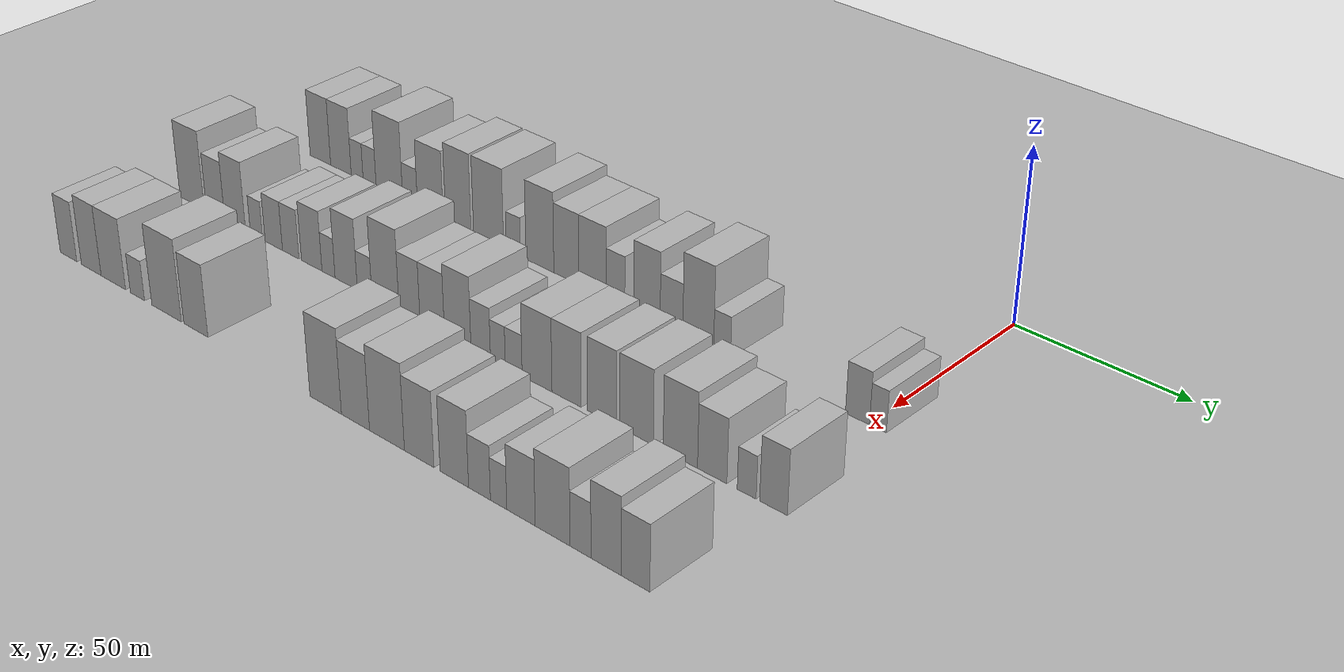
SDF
<sdf version="1.6">
 <world name="default">
  <include><name>ground_plane_1</name><uri>model://HANNAS_ground_plane</uri></include>
  <include>
   <name>ground_plane_2</name>
   <uri>model://HANNAS_ground_plane</uri>
   <pose>100 0 0  0 0 0</pose>
  </include>
  <model name="building_23">
   <static>1</static>
   <pose>50.0000 -192.0016 0 0.000000 0.000000 0.000000</pose>
   <link name="link">
    <pose>0 0 10.50 0 0 0</pose>
    <collision name="collision"><geometry><box><size>20.0000 8.7167 21.0000</size></box></geometry></collision>
    <visual name="visual">
     <cast_shadows>0</cast_shadows>
     <geometry><box><size>20.0000 8.7167 21.0000</size></box></geometry>
     <material>
      <script>
       <uri>model://HANNAS_wall/materials/scripts</uri>
       <uri>model://HANNAS_wall/materials/textures</uri>
       <name>vrc/HANNAS_wall</name>
      </script>
     </material>
    </visual>
   </link>
  </model>
  <model name="building_24">
   <static>1</static>
   <pose>50.0000 -183.3436 0 0.000000 0.000000 0.000000</pose>
   <link name="link">
    <pose>0 0 10.50 0 0 0</pose>
    <collision name="collision"><geometry><box><size>20.0000 8.5995 21.0000</size></box></geometry></collision>
    <visual name="visual">
     <cast_shadows>0</cast_shadows>
     <geometry><box><size>20.0000 8.5995 21.0000</size></box></geometry>
     <material>
      <script>
       <uri>model://HANNAS_wall/materials/scripts</uri>
       <uri>model://HANNAS_wall/materials/textures</uri>
       <name>vrc/HANNAS_wall</name>
      </script>
     </material>
    </visual>
   </link>
  </model>
  <model name="building_25">
   <static>1</static>
   <pose>50.0000 -176.5685 0 0.000000 0.000000 0.000000</pose>
   <link name="link">
    <pose>0 0 6.00 0 0 0</pose>
    <collision name="collision"><geometry><box><size>20.0000 4.9507 12.0000</size></box></geometry></collision>
    <visual name="visual">
     <cast_shadows>0</cast_shadows>
     <geometry><box><size>20.0000 4.9507 12.0000</size></box></geometry>
     <material>
      <script>
       <uri>model://HANNAS_wall/materials/scripts</uri>
       <uri>model://HANNAS_wall/materials/textures</uri>
       <name>vrc/HANNAS_wall</name>
      </script>
     </material>
    </visual>
   </link>
  </model>
  <model name="building_26">
   <static>1</static>
   <pose>50.0000 -171.4349 0 0.000000 0.000000 0.000000</pose>
   <link name="link">
    <pose>0 0 6.00 0 0 0</pose>
    <collision name="collision"><geometry><box><size>20.0000 5.3165 12.0000</size></box></geometry></collision>
    <visual name="visual">
     <cast_shadows>0</cast_shadows>
     <geometry><box><size>20.0000 5.3165 12.0000</size></box></geometry>
     <material>
      <script>
       <uri>model://HANNAS_wall/materials/scripts</uri>
       <uri>model://HANNAS_wall/materials/textures</uri>
       <name>vrc/HANNAS_wall</name>
      </script>
     </material>
    </visual>
   </link>
  </model>
  <model name="building_27">
   <static>1</static>
   <pose>50.0000 -163.4091 0 0.000000 0.000000 0.000000</pose>
   <link name="link">
    <pose>0 0 12.00 0 0 0</pose>
    <collision name="collision"><geometry><box><size>20.0000 10.7351 24.0000</size></box></geometry></collision>
    <visual name="visual">
     <cast_shadows>0</cast_shadows>
     <geometry><box><size>20.0000 10.7351 24.0000</size></box></geometry>
     <material>
      <script>
       <uri>model://HANNAS_wall/materials/scripts</uri>
       <uri>model://HANNAS_wall/materials/textures</uri>
       <name>vrc/HANNAS_wall</name>
      </script>
     </material>
    </visual>
   </link>
  </model>
  <model name="building_28">
   <static>1</static>
   <pose>50.0000 -155.1005 0 0.000000 0.000000 0.000000</pose>
   <link name="link">
    <pose>0 0 6.00 0 0 0</pose>
    <collision name="collision"><geometry><box><size>20.0000 5.8822 12.0000</size></box></geometry></collision>
    <visual name="visual">
     <cast_shadows>0</cast_shadows>
     <geometry><box><size>20.0000 5.8822 12.0000</size></box></geometry>
     <material>
      <script>
       <uri>model://HANNAS_wall/materials/scripts</uri>
       <uri>model://HANNAS_wall/materials/textures</uri>
       <name>vrc/HANNAS_wall</name>
      </script>
     </material>
    </visual>
   </link>
  </model>
  <model name="building_29">
   <static>1</static>
   <pose>50.0000 -147.1350 0 0.000000 0.000000 0.000000</pose>
   <link name="link">
    <pose>0 0 10.50 0 0 0</pose>
    <collision name="collision"><geometry><box><size>20.0000 10.0487 21.0000</size></box></geometry></collision>
    <visual name="visual">
     <cast_shadows>0</cast_shadows>
     <geometry><box><size>20.0000 10.0487 21.0000</size></box></geometry>
     <material>
      <script>
       <uri>model://HANNAS_wall/materials/scripts</uri>
       <uri>model://HANNAS_wall/materials/textures</uri>
       <name>vrc/HANNAS_wall</name>
      </script>
     </material>
    </visual>
   </link>
  </model>
  <model name="building_30">
   <static>1</static>
   <pose>50.0000 -136.2777 0 0.000000 0.000000 0.000000</pose>
   <link name="link">
    <pose>0 0 12.00 0 0 0</pose>
    <collision name="collision"><geometry><box><size>20.0000 9.6658 24.0000</size></box></geometry></collision>
    <visual name="visual">
     <cast_shadows>0</cast_shadows>
     <geometry><box><size>20.0000 9.6658 24.0000</size></box></geometry>
     <material>
      <script>
       <uri>model://HANNAS_wall/materials/scripts</uri>
       <uri>model://HANNAS_wall/materials/textures</uri>
       <name>vrc/HANNAS_wall</name>
      </script>
     </material>
    </visual>
   </link>
  </model>
  <model name="building_31">
   <static>1</static>
   <pose>50.0000 -124.8210 0 0.000000 0.000000 0.000000</pose>
   <link name="link">
    <pose>0 0 12.00 0 0 0</pose>
    <collision name="collision"><geometry><box><size>20.0000 11.2476 24.0000</size></box></geometry></collision>
    <visual name="visual">
     <cast_shadows>0</cast_shadows>
     <geometry><box><size>20.0000 11.2476 24.0000</size></box></geometry>
     <material>
      <script>
       <uri>model://HANNAS_wall/materials/scripts</uri>
       <uri>model://HANNAS_wall/materials/textures</uri>
       <name>vrc/HANNAS_wall</name>
      </script>
     </material>
    </visual>
   </link>
  </model>
  <model name="building_32">
   <static>1</static>
   <pose>50.0000 -115.5725 0 0.000000 0.000000 0.000000</pose>
   <link name="link">
    <pose>0 0 6.00 0 0 0</pose>
    <collision name="collision"><geometry><box><size>20.0000 5.2493 12.0000</size></box></geometry></collision>
    <visual name="visual">
     <cast_shadows>0</cast_shadows>
     <geometry><box><size>20.0000 5.2493 12.0000</size></box></geometry>
     <material>
      <script>
       <uri>model://HANNAS_wall/materials/scripts</uri>
       <uri>model://HANNAS_wall/materials/textures</uri>
       <name>vrc/HANNAS_wall</name>
      </script>
     </material>
    </visual>
   </link>
  </model>
  <model name="building_33">
   <static>1</static>
   <pose>50.0000 -105.9204 0 0.000000 0.000000 0.000000</pose>
   <link name="link">
    <pose>0 0 12.00 0 0 0</pose>
    <collision name="collision"><geometry><box><size>20.0000 10.0549 24.0000</size></box></geometry></collision>
    <visual name="visual">
     <cast_shadows>0</cast_shadows>
     <geometry><box><size>20.0000 10.0549 24.0000</size></box></geometry>
     <material>
      <script>
       <uri>model://HANNAS_wall/materials/scripts</uri>
       <uri>model://HANNAS_wall/materials/textures</uri>
       <name>vrc/HANNAS_wall</name>
      </script>
     </material>
    </visual>
   </link>
  </model>
  <model name="building_34">
   <static>1</static>
   <pose>50.0000 -96.4681 0 0.000000 0.000000 0.000000</pose>
   <link name="link">
    <pose>0 0 10.50 0 0 0</pose>
    <collision name="collision"><geometry><box><size>20.0000 8.8497 21.0000</size></box></geometry></collision>
    <visual name="visual">
     <cast_shadows>0</cast_shadows>
     <geometry><box><size>20.0000 8.8497 21.0000</size></box></geometry>
     <material>
      <script>
       <uri>model://HANNAS_wall/materials/scripts</uri>
       <uri>model://HANNAS_wall/materials/textures</uri>
       <name>vrc/HANNAS_wall</name>
      </script>
     </material>
    </visual>
   </link>
  </model>
  <model name="building_35">
   <static>1</static>
   <pose>50.0000 -87.3076 0 0.000000 0.000000 0.000000</pose>
   <link name="link">
    <pose>0 0 10.50 0 0 0</pose>
    <collision name="collision"><geometry><box><size>20.0000 9.4713 21.0000</size></box></geometry></collision>
    <visual name="visual">
     <cast_shadows>0</cast_shadows>
     <geometry><box><size>20.0000 9.4713 21.0000</size></box></geometry>
     <material>
      <script>
       <uri>model://HANNAS_wall/materials/scripts</uri>
       <uri>model://HANNAS_wall/materials/textures</uri>
       <name>vrc/HANNAS_wall</name>
      </script>
     </material>
    </visual>
   </link>
  </model>
  <model name="building_36">
   <static>1</static>
   <pose>50.0000 -79.3680 0 0.000000 0.000000 0.000000</pose>
   <link name="link">
    <pose>0 0 7.50 0 0 0</pose>
    <collision name="collision"><geometry><box><size>20.0000 6.4079 15.0000</size></box></geometry></collision>
    <visual name="visual">
     <cast_shadows>0</cast_shadows>
     <geometry><box><size>20.0000 6.4079 15.0000</size></box></geometry>
     <material>
      <script>
       <uri>model://HANNAS_wall/materials/scripts</uri>
       <uri>model://HANNAS_wall/materials/textures</uri>
       <name>vrc/HANNAS_wall</name>
      </script>
     </material>
    </visual>
   </link>
  </model>
  <model name="building_37">
   <static>1</static>
   <pose>50.0000 -68.7371 0 0.000000 0.000000 0.000000</pose>
   <link name="link">
    <pose>0 0 10.50 0 0 0</pose>
    <collision name="collision"><geometry><box><size>20.0000 8.8539 21.0000</size></box></geometry></collision>
    <visual name="visual">
     <cast_shadows>0</cast_shadows>
     <geometry><box><size>20.0000 8.8539 21.0000</size></box></geometry>
     <material>
      <script>
       <uri>model://HANNAS_wall/materials/scripts</uri>
       <uri>model://HANNAS_wall/materials/textures</uri>
       <name>vrc/HANNAS_wall</name>
      </script>
     </material>
    </visual>
   </link>
  </model>
  <model name="building_38">
   <static>1</static>
   <pose>50.0000 -60.5868 0 0.000000 0.000000 0.000000</pose>
   <link name="link">
    <pose>0 0 7.50 0 0 0</pose>
    <collision name="collision"><geometry><box><size>20.0000 7.4467 15.0000</size></box></geometry></collision>
    <visual name="visual">
     <cast_shadows>0</cast_shadows>
     <geometry><box><size>20.0000 7.4467 15.0000</size></box></geometry>
     <material>
      <script>
       <uri>model://HANNAS_wall/materials/scripts</uri>
       <uri>model://HANNAS_wall/materials/textures</uri>
       <name>vrc/HANNAS_wall</name>
      </script>
     </material>
    </visual>
   </link>
  </model>
  <model name="building_39">
   <static>1</static>
   <pose>50.0000 -51.8741 0 0.000000 0.000000 0.000000</pose>
   <link name="link">
    <pose>0 0 12.00 0 0 0</pose>
    <collision name="collision"><geometry><box><size>20.0000 9.9787 24.0000</size></box></geometry></collision>
    <visual name="visual">
     <cast_shadows>0</cast_shadows>
     <geometry><box><size>20.0000 9.9787 24.0000</size></box></geometry>
     <material>
      <script>
       <uri>model://HANNAS_wall/materials/scripts</uri>
       <uri>model://HANNAS_wall/materials/textures</uri>
       <name>vrc/HANNAS_wall</name>
      </script>
     </material>
    </visual>
   </link>
  </model>
  <model name="building_40">
   <static>1</static>
   <pose>50.0000 -44.1848 0 0.000000 0.000000 0.000000</pose>
   <link name="link">
    <pose>0 0 6.00 0 0 0</pose>
    <collision name="collision"><geometry><box><size>20.0000 5.3999 12.0000</size></box></geometry></collision>
    <visual name="visual">
     <cast_shadows>0</cast_shadows>
     <geometry><box><size>20.0000 5.3999 12.0000</size></box></geometry>
     <material>
      <script>
       <uri>model://HANNAS_wall/materials/scripts</uri>
       <uri>model://HANNAS_wall/materials/textures</uri>
       <name>vrc/HANNAS_wall</name>
      </script>
     </material>
    </visual>
   </link>
  </model>
  <model name="building_41">
   <static>1</static>
   <pose>50.0000 -2.9925 0 0.000000 0.000000 0.000000</pose>
   <link name="link">
    <pose>0 0 7.50 0 0 0</pose>
    <collision name="collision"><geometry><box><size>20.0000 6.9949 15.0000</size></box></geometry></collision>
    <visual name="visual">
     <cast_shadows>0</cast_shadows>
     <geometry><box><size>20.0000 6.9949 15.0000</size></box></geometry>
     <material>
      <script>
       <uri>model://HANNAS_wall/materials/scripts</uri>
       <uri>model://HANNAS_wall/materials/textures</uri>
       <name>vrc/HANNAS_wall</name>
      </script>
     </material>
    </visual>
   </link>
  </model>
  <model name="building_42">
   <static>1</static>
   <pose>50.0000 2.9377 0 0.000000 0.000000 0.000000</pose>
   <link name="link">
    <pose>0 0 6.00 0 0 0</pose>
    <collision name="collision"><geometry><box><size>20.0000 4.8656 12.0000</size></box></geometry></collision>
    <visual name="visual">
     <cast_shadows>0</cast_shadows>
     <geometry><box><size>20.0000 4.8656 12.0000</size></box></geometry>
     <material>
      <script>
       <uri>model://HANNAS_wall/materials/scripts</uri>
       <uri>model://HANNAS_wall/materials/textures</uri>
       <name>vrc/HANNAS_wall</name>
      </script>
     </material>
    </visual>
   </link>
  </model>
  <model name="building_106">
   <static>1</static>
   <pose>90.0000 -198.6692 0 0.000000 0.000000 0.000000</pose>
   <link name="link">
    <pose>0 0 12.00 0 0 0</pose>
    <collision name="collision"><geometry><box><size>20.0000 10.4894 24.0000</size></box></geometry></collision>
    <visual name="visual">
     <cast_shadows>0</cast_shadows>
     <geometry><box><size>20.0000 10.4894 24.0000</size></box></geometry>
     <material>
      <script>
       <uri>model://HANNAS_wall/materials/scripts</uri>
       <uri>model://HANNAS_wall/materials/textures</uri>
       <name>vrc/HANNAS_wall</name>
      </script>
     </material>
    </visual>
   </link>
  </model>
  <model name="building_107">
   <static>1</static>
   <pose>90.0000 -188.5554 0 0.000000 0.000000 0.000000</pose>
   <link name="link">
    <pose>0 0 9.00 0 0 0</pose>
    <collision name="collision"><geometry><box><size>20.0000 7.7381 18.0000</size></box></geometry></collision>
    <visual name="visual">
     <cast_shadows>0</cast_shadows>
     <geometry><box><size>20.0000 7.7381 18.0000</size></box></geometry>
     <material>
      <script>
       <uri>model://HANNAS_wall/materials/scripts</uri>
       <uri>model://HANNAS_wall/materials/textures</uri>
       <name>vrc/HANNAS_wall</name>
      </script>
     </material>
    </visual>
   </link>
  </model>
  <model name="building_108">
   <static>1</static>
   <pose>90.0000 -180.3380 0 0.000000 0.000000 0.000000</pose>
   <link name="link">
    <pose>0 0 10.50 0 0 0</pose>
    <collision name="collision"><geometry><box><size>20.0000 8.6967 21.0000</size></box></geometry></collision>
    <visual name="visual">
     <cast_shadows>0</cast_shadows>
     <geometry><box><size>20.0000 8.6967 21.0000</size></box></geometry>
     <material>
      <script>
       <uri>model://HANNAS_wall/materials/scripts</uri>
       <uri>model://HANNAS_wall/materials/textures</uri>
       <name>vrc/HANNAS_wall</name>
      </script>
     </material>
    </visual>
   </link>
  </model>
  <model name="building_109">
   <static>1</static>
   <pose>90.0000 -171.4732 0 0.000000 0.000000 0.000000</pose>
   <link name="link">
    <pose>0 0 6.00 0 0 0</pose>
    <collision name="collision"><geometry><box><size>20.0000 5.0329 12.0000</size></box></geometry></collision>
    <visual name="visual">
     <cast_shadows>0</cast_shadows>
     <geometry><box><size>20.0000 5.0329 12.0000</size></box></geometry>
     <material>
      <script>
       <uri>model://HANNAS_wall/materials/scripts</uri>
       <uri>model://HANNAS_wall/materials/textures</uri>
       <name>vrc/HANNAS_wall</name>
      </script>
     </material>
    </visual>
   </link>
  </model>
  <model name="building_110">
   <static>1</static>
   <pose>90.0000 -164.4345 0 0.000000 0.000000 0.000000</pose>
   <link name="link">
    <pose>0 0 7.50 0 0 0</pose>
    <collision name="collision"><geometry><box><size>20.0000 7.0444 15.0000</size></box></geometry></collision>
    <visual name="visual">
     <cast_shadows>0</cast_shadows>
     <geometry><box><size>20.0000 7.0444 15.0000</size></box></geometry>
     <material>
      <script>
       <uri>model://HANNAS_wall/materials/scripts</uri>
       <uri>model://HANNAS_wall/materials/textures</uri>
       <name>vrc/HANNAS_wall</name>
      </script>
     </material>
    </visual>
   </link>
  </model>
  <model name="building_111">
   <static>1</static>
   <pose>90.0000 -157.6160 0 0.000000 0.000000 0.000000</pose>
   <link name="link">
    <pose>0 0 7.50 0 0 0</pose>
    <collision name="collision"><geometry><box><size>20.0000 6.5925 15.0000</size></box></geometry></collision>
    <visual name="visual">
     <cast_shadows>0</cast_shadows>
     <geometry><box><size>20.0000 6.5925 15.0000</size></box></geometry>
     <material>
      <script>
       <uri>model://HANNAS_wall/materials/scripts</uri>
       <uri>model://HANNAS_wall/materials/textures</uri>
       <name>vrc/HANNAS_wall</name>
      </script>
     </material>
    </visual>
   </link>
  </model>
  <model name="building_112">
   <static>1</static>
   <pose>90.0000 -149.2899 0 0.000000 0.000000 0.000000</pose>
   <link name="link">
    <pose>0 0 9.00 0 0 0</pose>
    <collision name="collision"><geometry><box><size>20.0000 8.0599 18.0000</size></box></geometry></collision>
    <visual name="visual">
     <cast_shadows>0</cast_shadows>
     <geometry><box><size>20.0000 8.0599 18.0000</size></box></geometry>
     <material>
      <script>
       <uri>model://HANNAS_wall/materials/scripts</uri>
       <uri>model://HANNAS_wall/materials/textures</uri>
       <name>vrc/HANNAS_wall</name>
      </script>
     </material>
    </visual>
   </link>
  </model>
  <model name="building_113">
   <static>1</static>
   <pose>90.0000 -142.7128 0 0.000000 0.000000 0.000000</pose>
   <link name="link">
    <pose>0 0 6.00 0 0 0</pose>
    <collision name="collision"><geometry><box><size>20.0000 5.0942 12.0000</size></box></geometry></collision>
    <visual name="visual">
     <cast_shadows>0</cast_shadows>
     <geometry><box><size>20.0000 5.0942 12.0000</size></box></geometry>
     <material>
      <script>
       <uri>model://HANNAS_wall/materials/scripts</uri>
       <uri>model://HANNAS_wall/materials/textures</uri>
       <name>vrc/HANNAS_wall</name>
      </script>
     </material>
    </visual>
   </link>
  </model>
  <model name="building_114">
   <static>1</static>
   <pose>90.0000 -135.8971 0 0.000000 0.000000 0.000000</pose>
   <link name="link">
    <pose>0 0 10.50 0 0 0</pose>
    <collision name="collision"><geometry><box><size>20.0000 8.5373 21.0000</size></box></geometry></collision>
    <visual name="visual">
     <cast_shadows>0</cast_shadows>
     <geometry><box><size>20.0000 8.5373 21.0000</size></box></geometry>
     <material>
      <script>
       <uri>model://HANNAS_wall/materials/scripts</uri>
       <uri>model://HANNAS_wall/materials/textures</uri>
       <name>vrc/HANNAS_wall</name>
      </script>
     </material>
    </visual>
   </link>
  </model>
  <model name="building_115">
   <static>1</static>
   <pose>90.0000 -128.8696 0 0.000000 0.000000 0.000000</pose>
   <link name="link">
    <pose>0 0 6.00 0 0 0</pose>
    <collision name="collision"><geometry><box><size>20.0000 5.5177 12.0000</size></box></geometry></collision>
    <visual name="visual">
     <cast_shadows>0</cast_shadows>
     <geometry><box><size>20.0000 5.5177 12.0000</size></box></geometry>
     <material>
      <script>
       <uri>model://HANNAS_wall/materials/scripts</uri>
       <uri>model://HANNAS_wall/materials/textures</uri>
       <name>vrc/HANNAS_wall</name>
      </script>
     </material>
    </visual>
   </link>
  </model>
  <model name="building_116">
   <static>1</static>
   <pose>90.0000 -121.0434 0 0.000000 0.000000 0.000000</pose>
   <link name="link">
    <pose>0 0 12.00 0 0 0</pose>
    <collision name="collision"><geometry><box><size>20.0000 10.1347 24.0000</size></box></geometry></collision>
    <visual name="visual">
     <cast_shadows>0</cast_shadows>
     <geometry><box><size>20.0000 10.1347 24.0000</size></box></geometry>
     <material>
      <script>
       <uri>model://HANNAS_wall/materials/scripts</uri>
       <uri>model://HANNAS_wall/materials/textures</uri>
       <name>vrc/HANNAS_wall</name>
      </script>
     </material>
    </visual>
   </link>
  </model>
  <model name="building_117">
   <static>1</static>
   <pose>90.0000 -112.1661 0 0.000000 0.000000 0.000000</pose>
   <link name="link">
    <pose>0 0 9.00 0 0 0</pose>
    <collision name="collision"><geometry><box><size>20.0000 7.6199 18.0000</size></box></geometry></collision>
    <visual name="visual">
     <cast_shadows>0</cast_shadows>
     <geometry><box><size>20.0000 7.6199 18.0000</size></box></geometry>
     <material>
      <script>
       <uri>model://HANNAS_wall/materials/scripts</uri>
       <uri>model://HANNAS_wall/materials/textures</uri>
       <name>vrc/HANNAS_wall</name>
      </script>
     </material>
    </visual>
   </link>
  </model>
  <model name="building_118">
   <static>1</static>
   <pose>90.0000 -103.9689 0 0.000000 0.000000 0.000000</pose>
   <link name="link">
    <pose>0 0 9.00 0 0 0</pose>
    <collision name="collision"><geometry><box><size>20.0000 8.7744 18.0000</size></box></geometry></collision>
    <visual name="visual">
     <cast_shadows>0</cast_shadows>
     <geometry><box><size>20.0000 8.7744 18.0000</size></box></geometry>
     <material>
      <script>
       <uri>model://HANNAS_wall/materials/scripts</uri>
       <uri>model://HANNAS_wall/materials/textures</uri>
       <name>vrc/HANNAS_wall</name>
      </script>
     </material>
    </visual>
   </link>
  </model>
  <model name="building_119">
   <static>1</static>
   <pose>90.0000 -94.9212 0 0.000000 0.000000 0.000000</pose>
   <link name="link">
    <pose>0 0 10.50 0 0 0</pose>
    <collision name="collision"><geometry><box><size>20.0000 9.3210 21.0000</size></box></geometry></collision>
    <visual name="visual">
     <cast_shadows>0</cast_shadows>
     <geometry><box><size>20.0000 9.3210 21.0000</size></box></geometry>
     <material>
      <script>
       <uri>model://HANNAS_wall/materials/scripts</uri>
       <uri>model://HANNAS_wall/materials/textures</uri>
       <name>vrc/HANNAS_wall</name>
      </script>
     </material>
    </visual>
   </link>
  </model>
  <model name="building_120">
   <static>1</static>
   <pose>90.0000 -86.8888 0 0.000000 0.000000 0.000000</pose>
   <link name="link">
    <pose>0 0 7.50 0 0 0</pose>
    <collision name="collision"><geometry><box><size>20.0000 6.7439 15.0000</size></box></geometry></collision>
    <visual name="visual">
     <cast_shadows>0</cast_shadows>
     <geometry><box><size>20.0000 6.7439 15.0000</size></box></geometry>
     <material>
      <script>
       <uri>model://HANNAS_wall/materials/scripts</uri>
       <uri>model://HANNAS_wall/materials/textures</uri>
       <name>vrc/HANNAS_wall</name>
      </script>
     </material>
    </visual>
   </link>
  </model>
  <model name="building_121">
   <static>1</static>
   <pose>90.0000 -80.9761 0 0.000000 0.000000 0.000000</pose>
   <link name="link">
    <pose>0 0 6.00 0 0 0</pose>
    <collision name="collision"><geometry><box><size>20.0000 5.0815 12.0000</size></box></geometry></collision>
    <visual name="visual">
     <cast_shadows>0</cast_shadows>
     <geometry><box><size>20.0000 5.0815 12.0000</size></box></geometry>
     <material>
      <script>
       <uri>model://HANNAS_wall/materials/scripts</uri>
       <uri>model://HANNAS_wall/materials/textures</uri>
       <name>vrc/HANNAS_wall</name>
      </script>
     </material>
    </visual>
   </link>
  </model>
  <model name="building_122">
   <static>1</static>
   <pose>90.0000 -75.6022 0 0.000000 0.000000 0.000000</pose>
   <link name="link">
    <pose>0 0 6.00 0 0 0</pose>
    <collision name="collision"><geometry><box><size>20.0000 5.6663 12.0000</size></box></geometry></collision>
    <visual name="visual">
     <cast_shadows>0</cast_shadows>
     <geometry><box><size>20.0000 5.6663 12.0000</size></box></geometry>
     <material>
      <script>
       <uri>model://HANNAS_wall/materials/scripts</uri>
       <uri>model://HANNAS_wall/materials/textures</uri>
       <name>vrc/HANNAS_wall</name>
      </script>
     </material>
    </visual>
   </link>
  </model>
  <model name="building_123">
   <static>1</static>
   <pose>90.0000 -67.8086 0 0.000000 0.000000 0.000000</pose>
   <link name="link">
    <pose>0 0 10.50 0 0 0</pose>
    <collision name="collision"><geometry><box><size>20.0000 9.9208 21.0000</size></box></geometry></collision>
    <visual name="visual">
     <cast_shadows>0</cast_shadows>
     <geometry><box><size>20.0000 9.9208 21.0000</size></box></geometry>
     <material>
      <script>
       <uri>model://HANNAS_wall/materials/scripts</uri>
       <uri>model://HANNAS_wall/materials/textures</uri>
       <name>vrc/HANNAS_wall</name>
      </script>
     </material>
    </visual>
   </link>
  </model>
  <model name="building_124">
   <static>1</static>
   <pose>90.0000 -58.0881 0 0.000000 0.000000 0.000000</pose>
   <link name="link">
    <pose>0 0 10.50 0 0 0</pose>
    <collision name="collision"><geometry><box><size>20.0000 9.5201 21.0000</size></box></geometry></collision>
    <visual name="visual">
     <cast_shadows>0</cast_shadows>
     <geometry><box><size>20.0000 9.5201 21.0000</size></box></geometry>
     <material>
      <script>
       <uri>model://HANNAS_wall/materials/scripts</uri>
       <uri>model://HANNAS_wall/materials/textures</uri>
       <name>vrc/HANNAS_wall</name>
      </script>
     </material>
    </visual>
   </link>
  </model>
  <model name="building_125">
   <static>1</static>
   <pose>90.0000 -46.6907 0 0.000000 0.000000 0.000000</pose>
   <link name="link">
    <pose>0 0 10.50 0 0 0</pose>
    <collision name="collision"><geometry><box><size>20.0000 9.2747 21.0000</size></box></geometry></collision>
    <visual name="visual">
     <cast_shadows>0</cast_shadows>
     <geometry><box><size>20.0000 9.2747 21.0000</size></box></geometry>
     <material>
      <script>
       <uri>model://HANNAS_wall/materials/scripts</uri>
       <uri>model://HANNAS_wall/materials/textures</uri>
       <name>vrc/HANNAS_wall</name>
      </script>
     </material>
    </visual>
   </link>
  </model>
  <model name="building_126">
   <static>1</static>
   <pose>90.0000 -35.8779 0 0.000000 0.000000 0.000000</pose>
   <link name="link">
    <pose>0 0 10.50 0 0 0</pose>
    <collision name="collision"><geometry><box><size>20.0000 10.3509 21.0000</size></box></geometry></collision>
    <visual name="visual">
     <cast_shadows>0</cast_shadows>
     <geometry><box><size>20.0000 10.3509 21.0000</size></box></geometry>
     <material>
      <script>
       <uri>model://HANNAS_wall/materials/scripts</uri>
       <uri>model://HANNAS_wall/materials/textures</uri>
       <name>vrc/HANNAS_wall</name>
      </script>
     </material>
    </visual>
   </link>
  </model>
  <model name="building_127">
   <static>1</static>
   <pose>90.0000 -22.5473 0 0.000000 0.000000 0.000000</pose>
   <link name="link">
    <pose>0 0 10.50 0 0 0</pose>
    <collision name="collision"><geometry><box><size>20.0000 10.3104 21.0000</size></box></geometry></collision>
    <visual name="visual">
     <cast_shadows>0</cast_shadows>
     <geometry><box><size>20.0000 10.3104 21.0000</size></box></geometry>
     <material>
      <script>
       <uri>model://HANNAS_wall/materials/scripts</uri>
       <uri>model://HANNAS_wall/materials/textures</uri>
       <name>vrc/HANNAS_wall</name>
      </script>
     </material>
    </visual>
   </link>
  </model>
  <model name="building_128">
   <static>1</static>
   <pose>90.0000 -13.0760 0 0.000000 0.000000 0.000000</pose>
   <link name="link">
    <pose>0 0 9.00 0 0 0</pose>
    <collision name="collision"><geometry><box><size>20.0000 8.6322 18.0000</size></box></geometry></collision>
    <visual name="visual">
     <cast_shadows>0</cast_shadows>
     <geometry><box><size>20.0000 8.6322 18.0000</size></box></geometry>
     <material>
      <script>
       <uri>model://HANNAS_wall/materials/scripts</uri>
       <uri>model://HANNAS_wall/materials/textures</uri>
       <name>vrc/HANNAS_wall</name>
      </script>
     </material>
    </visual>
   </link>
  </model>
  <model name="building_129">
   <static>1</static>
   <pose>90.0000 -3.0436 0 0.000000 0.000000 0.000000</pose>
   <link name="link">
    <pose>0 0 6.00 0 0 0</pose>
    <collision name="collision"><geometry><box><size>20.0000 5.4326 12.0000</size></box></geometry></collision>
    <visual name="visual">
     <cast_shadows>0</cast_shadows>
     <geometry><box><size>20.0000 5.4326 12.0000</size></box></geometry>
     <material>
      <script>
       <uri>model://HANNAS_wall/materials/scripts</uri>
       <uri>model://HANNAS_wall/materials/textures</uri>
       <name>vrc/HANNAS_wall</name>
      </script>
     </material>
    </visual>
   </link>
  </model>
  <model name="building_130">
   <static>1</static>
   <pose>90.0000 4.5925 0 0.000000 0.000000 0.000000</pose>
   <link name="link">
    <pose>0 0 9.00 0 0 0</pose>
    <collision name="collision"><geometry><box><size>20.0000 7.8396 18.0000</size></box></geometry></collision>
    <visual name="visual">
     <cast_shadows>0</cast_shadows>
     <geometry><box><size>20.0000 7.8396 18.0000</size></box></geometry>
     <material>
      <script>
       <uri>model://HANNAS_wall/materials/scripts</uri>
       <uri>model://HANNAS_wall/materials/textures</uri>
       <name>vrc/HANNAS_wall</name>
      </script>
     </material>
    </visual>
   </link>
  </model>
  <model name="building_193">
   <static>1</static>
   <pose>130.0000 -199.1911 0 0.000000 0.000000 0.000000</pose>
   <link name="link">
    <pose>0 0 9.00 0 0 0</pose>
    <collision name="collision"><geometry><box><size>20.0000 7.2171 18.0000</size></box></geometry></collision>
    <visual name="visual">
     <cast_shadows>0</cast_shadows>
     <geometry><box><size>20.0000 7.2171 18.0000</size></box></geometry>
     <material>
      <script>
       <uri>model://HANNAS_wall/materials/scripts</uri>
       <uri>model://HANNAS_wall/materials/textures</uri>
       <name>vrc/HANNAS_wall</name>
      </script>
     </material>
    </visual>
   </link>
  </model>
  <model name="building_194">
   <static>1</static>
   <pose>130.0000 -189.3496 0 0.000000 0.000000 0.000000</pose>
   <link name="link">
    <pose>0 0 10.50 0 0 0</pose>
    <collision name="collision"><geometry><box><size>20.0000 8.4659 21.0000</size></box></geometry></collision>
    <visual name="visual">
     <cast_shadows>0</cast_shadows>
     <geometry><box><size>20.0000 8.4659 21.0000</size></box></geometry>
     <material>
      <script>
       <uri>model://HANNAS_wall/materials/scripts</uri>
       <uri>model://HANNAS_wall/materials/textures</uri>
       <name>vrc/HANNAS_wall</name>
      </script>
     </material>
    </visual>
   </link>
  </model>
  <model name="building_195">
   <static>1</static>
   <pose>130.0000 -179.9699 0 0.000000 0.000000 0.000000</pose>
   <link name="link">
    <pose>0 0 10.50 0 0 0</pose>
    <collision name="collision"><geometry><box><size>20.0000 10.2935 21.0000</size></box></geometry></collision>
    <visual name="visual">
     <cast_shadows>0</cast_shadows>
     <geometry><box><size>20.0000 10.2935 21.0000</size></box></geometry>
     <material>
      <script>
       <uri>model://HANNAS_wall/materials/scripts</uri>
       <uri>model://HANNAS_wall/materials/textures</uri>
       <name>vrc/HANNAS_wall</name>
      </script>
     </material>
    </visual>
   </link>
  </model>
  <model name="building_196">
   <static>1</static>
   <pose>130.0000 -169.9064 0 0.000000 0.000000 0.000000</pose>
   <link name="link">
    <pose>0 0 6.00 0 0 0</pose>
    <collision name="collision"><geometry><box><size>20.0000 5.8334 12.0000</size></box></geometry></collision>
    <visual name="visual">
     <cast_shadows>0</cast_shadows>
     <geometry><box><size>20.0000 5.8334 12.0000</size></box></geometry>
     <material>
      <script>
       <uri>model://HANNAS_wall/materials/scripts</uri>
       <uri>model://HANNAS_wall/materials/textures</uri>
       <name>vrc/HANNAS_wall</name>
      </script>
     </material>
    </visual>
   </link>
  </model>
  <model name="building_197">
   <static>1</static>
   <pose>130.0000 -158.0417 0 0.000000 0.000000 0.000000</pose>
   <link name="link">
    <pose>0 0 12.00 0 0 0</pose>
    <collision name="collision"><geometry><box><size>20.0000 11.8959 24.0000</size></box></geometry></collision>
    <visual name="visual">
     <cast_shadows>0</cast_shadows>
     <geometry><box><size>20.0000 11.8959 24.0000</size></box></geometry>
     <material>
      <script>
       <uri>model://HANNAS_wall/materials/scripts</uri>
       <uri>model://HANNAS_wall/materials/textures</uri>
       <name>vrc/HANNAS_wall</name>
      </script>
     </material>
    </visual>
   </link>
  </model>
  <model name="building_198">
   <static>1</static>
   <pose>130.0000 -146.3653 0 0.000000 0.000000 0.000000</pose>
   <link name="link">
    <pose>0 0 10.50 0 0 0</pose>
    <collision name="collision"><geometry><box><size>20.0000 9.4570 21.0000</size></box></geometry></collision>
    <visual name="visual">
     <cast_shadows>0</cast_shadows>
     <geometry><box><size>20.0000 9.4570 21.0000</size></box></geometry>
     <material>
      <script>
       <uri>model://HANNAS_wall/materials/scripts</uri>
       <uri>model://HANNAS_wall/materials/textures</uri>
       <name>vrc/HANNAS_wall</name>
      </script>
     </material>
    </visual>
   </link>
  </model>
  <model name="building_199">
   <static>1</static>
   <pose>130.0000 -97.8774 0 0.000000 0.000000 0.000000</pose>
   <link name="link">
    <pose>0 0 12.00 0 0 0</pose>
    <collision name="collision"><geometry><box><size>20.0000 11.1729 24.0000</size></box></geometry></collision>
    <visual name="visual">
     <cast_shadows>0</cast_shadows>
     <geometry><box><size>20.0000 11.1729 24.0000</size></box></geometry>
     <material>
      <script>
       <uri>model://HANNAS_wall/materials/scripts</uri>
       <uri>model://HANNAS_wall/materials/textures</uri>
       <name>vrc/HANNAS_wall</name>
      </script>
     </material>
    </visual>
   </link>
  </model>
  <model name="building_200">
   <static>1</static>
   <pose>130.0000 -87.4264 0 0.000000 0.000000 0.000000</pose>
   <link name="link">
    <pose>0 0 10.50 0 0 0</pose>
    <collision name="collision"><geometry><box><size>20.0000 9.7291 21.0000</size></box></geometry></collision>
    <visual name="visual">
     <cast_shadows>0</cast_shadows>
     <geometry><box><size>20.0000 9.7291 21.0000</size></box></geometry>
     <material>
      <script>
       <uri>model://HANNAS_wall/materials/scripts</uri>
       <uri>model://HANNAS_wall/materials/textures</uri>
       <name>vrc/HANNAS_wall</name>
      </script>
     </material>
    </visual>
   </link>
  </model>
  <model name="building_201">
   <static>1</static>
   <pose>130.0000 -76.6672 0 0.000000 0.000000 0.000000</pose>
   <link name="link">
    <pose>0 0 12.00 0 0 0</pose>
    <collision name="collision"><geometry><box><size>20.0000 11.7893 24.0000</size></box></geometry></collision>
    <visual name="visual">
     <cast_shadows>0</cast_shadows>
     <geometry><box><size>20.0000 11.7893 24.0000</size></box></geometry>
     <material>
      <script>
       <uri>model://HANNAS_wall/materials/scripts</uri>
       <uri>model://HANNAS_wall/materials/textures</uri>
       <name>vrc/HANNAS_wall</name>
      </script>
     </material>
    </visual>
   </link>
  </model>
  <model name="building_202">
   <static>1</static>
   <pose>130.0000 -65.8925 0 0.000000 0.000000 0.000000</pose>
   <link name="link">
    <pose>0 0 10.50 0 0 0</pose>
    <collision name="collision"><geometry><box><size>20.0000 9.7601 21.0000</size></box></geometry></collision>
    <visual name="visual">
     <cast_shadows>0</cast_shadows>
     <geometry><box><size>20.0000 9.7601 21.0000</size></box></geometry>
     <material>
      <script>
       <uri>model://HANNAS_wall/materials/scripts</uri>
       <uri>model://HANNAS_wall/materials/textures</uri>
       <name>vrc/HANNAS_wall</name>
      </script>
     </material>
    </visual>
   </link>
  </model>
  <model name="building_203">
   <static>1</static>
   <pose>130.0000 -54.4409 0 0.000000 0.000000 0.000000</pose>
   <link name="link">
    <pose>0 0 10.50 0 0 0</pose>
    <collision name="collision"><geometry><box><size>20.0000 9.1432 21.0000</size></box></geometry></collision>
    <visual name="visual">
     <cast_shadows>0</cast_shadows>
     <geometry><box><size>20.0000 9.1432 21.0000</size></box></geometry>
     <material>
      <script>
       <uri>model://HANNAS_wall/materials/scripts</uri>
       <uri>model://HANNAS_wall/materials/textures</uri>
       <name>vrc/HANNAS_wall</name>
      </script>
     </material>
    </visual>
   </link>
  </model>
  <model name="building_204">
   <static>1</static>
   <pose>130.0000 -46.4232 0 0.000000 0.000000 0.000000</pose>
   <link name="link">
    <pose>0 0 7.50 0 0 0</pose>
    <collision name="collision"><geometry><box><size>20.0000 6.8922 15.0000</size></box></geometry></collision>
    <visual name="visual">
     <cast_shadows>0</cast_shadows>
     <geometry><box><size>20.0000 6.8922 15.0000</size></box></geometry>
     <material>
      <script>
       <uri>model://HANNAS_wall/materials/scripts</uri>
       <uri>model://HANNAS_wall/materials/textures</uri>
       <name>vrc/HANNAS_wall</name>
      </script>
     </material>
    </visual>
   </link>
  </model>
  <model name="building_205">
   <static>1</static>
   <pose>130.0000 -40.4241 0 0.000000 0.000000 0.000000</pose>
   <link name="link">
    <pose>0 0 6.00 0 0 0</pose>
    <collision name="collision"><geometry><box><size>20.0000 5.1059 12.0000</size></box></geometry></collision>
    <visual name="visual">
     <cast_shadows>0</cast_shadows>
     <geometry><box><size>20.0000 5.1059 12.0000</size></box></geometry>
     <material>
      <script>
       <uri>model://HANNAS_wall/materials/scripts</uri>
       <uri>model://HANNAS_wall/materials/textures</uri>
       <name>vrc/HANNAS_wall</name>
      </script>
     </material>
    </visual>
   </link>
  </model>
  <model name="building_206">
   <static>1</static>
   <pose>130.0000 -33.5171 0 0.000000 0.000000 0.000000</pose>
   <link name="link">
    <pose>0 0 9.00 0 0 0</pose>
    <collision name="collision"><geometry><box><size>20.0000 8.7082 18.0000</size></box></geometry></collision>
    <visual name="visual">
     <cast_shadows>0</cast_shadows>
     <geometry><box><size>20.0000 8.7082 18.0000</size></box></geometry>
     <material>
      <script>
       <uri>model://HANNAS_wall/materials/scripts</uri>
       <uri>model://HANNAS_wall/materials/textures</uri>
       <name>vrc/HANNAS_wall</name>
      </script>
     </material>
    </visual>
   </link>
  </model>
  <model name="building_207">
   <static>1</static>
   <pose>130.0000 -23.9565 0 0.000000 0.000000 0.000000</pose>
   <link name="link">
    <pose>0 0 10.50 0 0 0</pose>
    <collision name="collision"><geometry><box><size>20.0000 10.4131 21.0000</size></box></geometry></collision>
    <visual name="visual">
     <cast_shadows>0</cast_shadows>
     <geometry><box><size>20.0000 10.4131 21.0000</size></box></geometry>
     <material>
      <script>
       <uri>model://HANNAS_wall/materials/scripts</uri>
       <uri>model://HANNAS_wall/materials/textures</uri>
       <name>vrc/HANNAS_wall</name>
      </script>
     </material>
    </visual>
   </link>
  </model>
  <model name="building_208">
   <static>1</static>
   <pose>130.0000 -15.6732 0 0.000000 0.000000 0.000000</pose>
   <link name="link">
    <pose>0 0 7.50 0 0 0</pose>
    <collision name="collision"><geometry><box><size>20.0000 6.1534 15.0000</size></box></geometry></collision>
    <visual name="visual">
     <cast_shadows>0</cast_shadows>
     <geometry><box><size>20.0000 6.1534 15.0000</size></box></geometry>
     <material>
      <script>
       <uri>model://HANNAS_wall/materials/scripts</uri>
       <uri>model://HANNAS_wall/materials/textures</uri>
       <name>vrc/HANNAS_wall</name>
      </script>
     </material>
    </visual>
   </link>
  </model>
  <model name="building_209">
   <static>1</static>
   <pose>130.0000 -8.2402 0 0.000000 0.000000 0.000000</pose>
   <link name="link">
    <pose>0 0 10.50 0 0 0</pose>
    <collision name="collision"><geometry><box><size>20.0000 8.7126 21.0000</size></box></geometry></collision>
    <visual name="visual">
     <cast_shadows>0</cast_shadows>
     <geometry><box><size>20.0000 8.7126 21.0000</size></box></geometry>
     <material>
      <script>
       <uri>model://HANNAS_wall/materials/scripts</uri>
       <uri>model://HANNAS_wall/materials/textures</uri>
       <name>vrc/HANNAS_wall</name>
      </script>
     </material>
    </visual>
   </link>
  </model>
  <model name="building_210">
   <static>1</static>
   <pose>130.0000 0.1471 0 0.000000 0.000000 0.000000</pose>
   <link name="link">
    <pose>0 0 9.00 0 0 0</pose>
    <collision name="collision"><geometry><box><size>20.0000 8.0619 18.0000</size></box></geometry></collision>
    <visual name="visual">
     <cast_shadows>0</cast_shadows>
     <geometry><box><size>20.0000 8.0619 18.0000</size></box></geometry>
     <material>
      <script>
       <uri>model://HANNAS_wall/materials/scripts</uri>
       <uri>model://HANNAS_wall/materials/textures</uri>
       <name>vrc/HANNAS_wall</name>
      </script>
     </material>
    </visual>
   </link>
  </model>
 </world>
</sdf>
